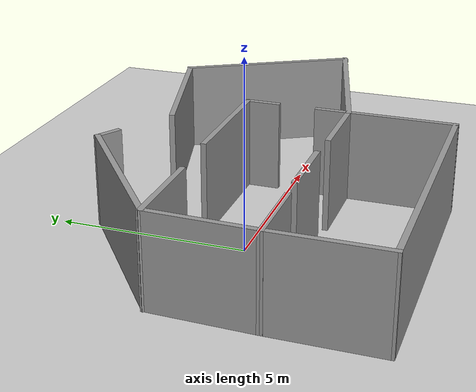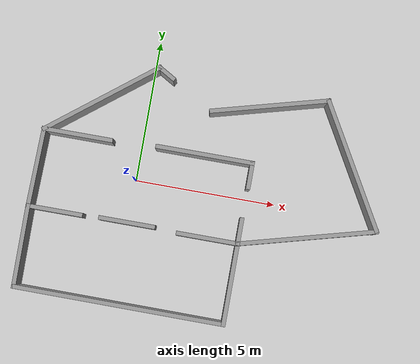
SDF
<sdf version="1.6">
 <world name="default">
  <light name="sun" type="directional">
   <pose>0 0 10 0 -0 0</pose>
   <diffuse>0.8 0.8 0.8 1</diffuse>
   <specular>0.2 0.2 0.2 1</specular>
   <attenuation>
    <range>1000</range>
    <constant>0.9</constant>
    <linear>0.01</linear>
    <quadratic>0.001</quadratic>
   </attenuation>
   <direction>-0.5 0.1 -0.9</direction>
  </light>
  <model name="ground_plane">
   <static>1</static>
   <link name="link">
    <collision name="collision">
     <geometry><plane><normal>0 0 1</normal><size>100 100</size></plane></geometry>
     <surface>
      <contact><collide_bitmask>65535</collide_bitmask></contact>
      <friction><ode><mu>100</mu><mu2>50</mu2></ode></friction>
     </surface>
    </collision>
    <visual name="visual">
     <cast_shadows>0</cast_shadows>
     <geometry><plane><normal>0 0 1</normal><size>100 100</size></plane></geometry>
     <material>
      <script><uri>file://media/materials/scripts/gazebo.material</uri><name>Gazebo/Grey</name></script>
     </material>
    </visual>
   </link>
  </model>
  <gravity>0 0 -9.8</gravity>
  <magnetic_field>6e-06 2.3e-05 -4.2e-05</magnetic_field>
  <atmosphere type="adiabatic"/>
  <physics name="default_physics" default="0" type="ode">
   <max_step_size>0.001</max_step_size>
   <real_time_factor>1</real_time_factor>
   <real_time_update_rate>1000</real_time_update_rate>
  </physics>
  <scene><ambient>0.4 0.4 0.4 1</ambient><background>0.7 0.7 0.7 1</background><shadows>1</shadows></scene>
  <spherical_coordinates>
   <surface_model>EARTH_WGS84</surface_model>
   <latitude_deg>0</latitude_deg>
   <longitude_deg>0</longitude_deg>
   <elevation>0</elevation>
   <heading_deg>0</heading_deg>
  </spherical_coordinates>
  <model name="moj_model">
   <pose>2.57272 -0.221151 0 0 -0 0</pose>
   <link name="Wall_0">
    <collision name="Wall_0_Collision">
     <geometry><box><size>3 0.15 2.5</size></box></geometry>
     <pose>0 0 1.25 0 -0 0</pose>
    </collision>
    <visual name="Wall_0_Visual">
     <pose>0 0 1.25 0 -0 0</pose>
     <geometry><box><size>3 0.15 2.5</size></box></geometry>
     <material>
      <script><uri>file://media/materials/scripts/gazebo.material</uri><name>Gazebo/Grey</name></script>
      <ambient>1 1 1 1</ambient>
     </material>
     <meta><layer>0</layer></meta>
    </visual>
    <pose>-6.06005 -2.76964 0 0 -0 1.5708</pose>
   </link>
   <link name="Wall_1">
    <collision name="Wall_1_Collision">
     <geometry><box><size>2 0.15 2.5</size></box></geometry>
     <pose>0 0 1.25 0 -0 0</pose>
    </collision>
    <visual name="Wall_1_Visual">
     <pose>0 0 1.25 0 -0 0</pose>
     <geometry><box><size>2 0.15 2.5</size></box></geometry>
     <material>
      <script><uri>file://media/materials/scripts/gazebo.material</uri><name>Gazebo/Grey</name></script>
      <ambient>1 1 1 1</ambient>
     </material>
     <meta><layer>0</layer></meta>
    </visual>
    <pose>-5.13505 -1.34464 0 0 -0 0</pose>
   </link>
   <link name="Wall_10">
    <collision name="Wall_10_Collision">
     <geometry><box><size>3 0.15 2.5</size></box></geometry>
     <pose>0 0 1.25 0 -0 0</pose>
    </collision>
    <visual name="Wall_10_Visual">
     <pose>0 0 1.25 0 -0 0</pose>
     <geometry><box><size>3 0.15 2.5</size></box></geometry>
     <material>
      <script><uri>file://media/materials/scripts/gazebo.material</uri><name>Gazebo/Grey</name></script>
      <ambient>1 1 1 1</ambient>
     </material>
     <meta><layer>0</layer></meta>
    </visual>
    <pose>1.34995 -2.79964 0 0 -0 -1.5708</pose>
   </link>
   <link name="Wall_11">
    <collision name="Wall_11_Collision">
     <geometry><box><size>7.56006 0.15 2.5</size></box></geometry>
     <pose>0 0 1.25 0 -0 0</pose>
    </collision>
    <visual name="Wall_11_Visual">
     <pose>0 0 1.25 0 -0 0</pose>
     <geometry><box><size>7.56006 0.15 2.5</size></box></geometry>
     <material>
      <script><uri>file://media/materials/scripts/gazebo.material</uri><name>Gazebo/Grey</name></script>
      <ambient>1 1 1 1</ambient>
     </material>
     <meta><layer>0</layer></meta>
    </visual>
    <pose>-2.35505 -4.20964 0 0 -0 3.13754</pose>
   </link>
   <link name="Wall_13">
    <collision name="Wall_13_Collision">
     <geometry><box><size>1 0.15 2.5</size></box></geometry>
     <pose>0 0 1.25 0 -0 0</pose>
    </collision>
    <visual name="Wall_13_Visual">
     <pose>0 0 1.25 0 -0 0</pose>
     <geometry><box><size>1 0.15 2.5</size></box></geometry>
     <material>
      <script><uri>file://media/materials/scripts/gazebo.material</uri><name>Gazebo/Grey</name></script>
      <ambient>1 1 1 1</ambient>
     </material>
     <meta><layer>0</layer></meta>
    </visual>
    <pose>1.34995 -0.949641 0 0 -0 1.5708</pose>
   </link>
   <link name="Wall_15">
    <collision name="Wall_15_Collision">
     <geometry><box><size>1 0.15 2.5</size></box></geometry>
     <pose>0 0 1.25 0 -0 0</pose>
    </collision>
    <visual name="Wall_15_Visual">
     <pose>0 0 1.25 0 -0 0</pose>
     <geometry><box><size>1 0.15 2.5</size></box></geometry>
     <material>
      <script><uri>file://media/materials/scripts/gazebo.material</uri><name>Gazebo/Grey</name></script>
      <ambient>1 1 1 1</ambient>
     </material>
     <meta><layer>0</layer></meta>
    </visual>
    <pose>1.36995 1.05036 0 0 -0 1.5708</pose>
   </link>
   <link name="Wall_17">
    <collision name="Wall_17_Collision">
     <geometry><box><size>3.5 0.15 2.5</size></box></geometry>
     <pose>0 0 1.25 0 -0 0</pose>
    </collision>
    <visual name="Wall_17_Visual">
     <pose>0 0 1.25 0 -0 0</pose>
     <geometry><box><size>3.5 0.15 2.5</size></box></geometry>
     <material>
      <script><uri>file://media/materials/scripts/gazebo.material</uri><name>Gazebo/Grey</name></script>
      <ambient>1 1 1 1</ambient>
     </material>
     <meta><layer>0</layer></meta>
    </visual>
    <pose>-0.305049 1.47536 0 0 -0 3.14159</pose>
   </link>
   <link name="Wall_6">
    <collision name="Wall_6_Collision">
     <geometry><box><size>2 0.15 2.5</size></box></geometry>
     <pose>0 0 1.25 0 -0 0</pose>
    </collision>
    <visual name="Wall_6_Visual">
     <pose>0 0 1.25 0 -0 0</pose>
     <geometry><box><size>2 0.15 2.5</size></box></geometry>
     <material>
      <script><uri>file://media/materials/scripts/gazebo.material</uri><name>Gazebo/Grey</name></script>
      <ambient>1 1 1 1</ambient>
     </material>
     <meta><layer>0</layer></meta>
    </visual>
    <pose>-2.57505 -1.31464 0 0 -0 0</pose>
   </link>
   <link name="Wall_8">
    <collision name="Wall_8_Collision">
     <geometry><box><size>2.25 0.15 2.5</size></box></geometry>
     <pose>0 0 1.25 0 -0 0</pose>
    </collision>
    <visual name="Wall_8_Visual">
     <pose>0 0 1.25 0 -0 0</pose>
     <geometry><box><size>2.25 0.15 2.5</size></box></geometry>
     <material>
      <script><uri>file://media/materials/scripts/gazebo.material</uri><name>Gazebo/Grey</name></script>
      <ambient>1 1 1 1</ambient>
     </material>
     <meta><layer>0</layer></meta>
    </visual>
    <pose>0.299951 -1.37464 0 0 -0 0</pose>
   </link>
   <link name="Wall_82">
    <collision name="Wall_82_Collision">
     <geometry><box><size>2.5 0.15 2.5</size></box></geometry>
     <pose>0 0 1.25 0 -0 0</pose>
    </collision>
    <visual name="Wall_82_Visual">
     <pose>0 0 1.25 0 -0 0</pose>
     <geometry><box><size>2.5 0.15 2.5</size></box></geometry>
     <material>
      <script><uri>file://media/materials/scripts/gazebo.material</uri><name>Gazebo/Grey</name></script>
      <ambient>1 1 1 1</ambient>
     </material>
     <meta><layer>0</layer></meta>
    </visual>
    <pose>-4.80738 1.39689 0 0 -0 3.14159</pose>
   </link>
   <link name="Wall_83">
    <collision name="Wall_83_Collision">
     <geometry><box><size>2.89263 0.15 2.5</size></box></geometry>
     <pose>0 0 1.25 0 -0 0</pose>
    </collision>
    <visual name="Wall_83_Visual">
     <pose>0 0 1.25 0 -0 0</pose>
     <geometry><box><size>2.89263 0.15 2.5</size></box></geometry>
     <material>
      <script><uri>file://media/materials/scripts/gazebo.material</uri><name>Gazebo/Grey</name></script>
      <ambient>1 1 1 1</ambient>
     </material>
     <meta><layer>0</layer></meta>
    </visual>
    <pose>-6.02121 0.026122 0 0 -0 -1.59912</pose>
   </link>
   <link name="Wall_85">
    <collision name="Wall_85_Collision">
     <geometry><box><size>5 0.15 2.5</size></box></geometry>
     <pose>0 0 1.25 0 -0 0</pose>
    </collision>
    <visual name="Wall_85_Visual">
     <pose>0 0 1.25 0 -0 0</pose>
     <geometry><box><size>5 0.15 2.5</size></box></geometry>
     <material>
      <script><uri>file://media/materials/scripts/gazebo.material</uri><name>Gazebo/Grey</name></script>
      <ambient>1 1 1 1</ambient>
     </material>
     <meta><layer>0</layer></meta>
    </visual>
    <pose>3.69232 -0.747005 0 0 -0 0.261799</pose>
   </link>
   <link name="Wall_86">
    <collision name="Wall_86_Collision">
     <geometry><box><size>5 0.15 2.5</size></box></geometry>
     <pose>0 0 1.25 0 -0 0</pose>
    </collision>
    <visual name="Wall_86_Visual">
     <pose>0 0 1.25 0 -0 0</pose>
     <geometry><box><size>5 0.15 2.5</size></box></geometry>
     <material>
      <script><uri>file://media/materials/scripts/gazebo.material</uri><name>Gazebo/Grey</name></script>
      <ambient>1 1 1 1</ambient>
     </material>
     <meta><layer>0</layer></meta>
    </visual>
    <pose>4.82219 1.98074 0 0 -0 2.0944</pose>
   </link>
   <link name="Wall_87">
    <collision name="Wall_87_Collision">
     <geometry><box><size>4.25 0.15 2.5</size></box></geometry>
     <pose>0 0 1.25 0 -0 0</pose>
    </collision>
    <visual name="Wall_87_Visual">
     <pose>0 0 1.25 0 -0 0</pose>
     <geometry><box><size>4.25 0.15 2.5</size></box></geometry>
     <material>
      <script><uri>file://media/materials/scripts/gazebo.material</uri><name>Gazebo/Grey</name></script>
      <ambient>1 1 1 1</ambient>
     </material>
     <meta><layer>0</layer></meta>
    </visual>
    <pose>1.62954 3.55028 0 0 -0 -2.87979</pose>
   </link>
   <link name="Wall_89">
    <collision name="Wall_89_Collision">
     <geometry><box><size>4.70668 0.15 2.5</size></box></geometry>
     <pose>0 0 1.25 0 -0 0</pose>
    </collision>
    <visual name="Wall_89_Visual">
     <pose>0 0 1.25 0 -0 0</pose>
     <geometry><box><size>4.70668 0.15 2.5</size></box></geometry>
     <material>
      <script><uri>file://media/materials/scripts/gazebo.material</uri><name>Gazebo/Grey</name></script>
      <ambient>1 1 1 1</ambient>
     </material>
     <meta><layer>0</layer></meta>
    </visual>
    <pose>-4.18407 2.79579 0 0 -0 -2.48047</pose>
   </link>
   <link name="Wall_91">
    <collision name="Wall_91_Collision">
     <geometry><box><size>0.75 0.15 2.5</size></box></geometry>
     <pose>0 0 1.25 0 -0 0</pose>
    </collision>
    <visual name="Wall_91_Visual">
     <pose>0 0 1.25 0 -0 0</pose>
     <geometry><box><size>0.75 0.15 2.5</size></box></geometry>
     <material>
      <script><uri>file://media/materials/scripts/gazebo.material</uri><name>Gazebo/Grey</name></script>
      <ambient>1 1 1 1</ambient>
     </material>
     <meta><layer>0</layer></meta>
    </visual>
    <pose>-2.12596 4.0447 0 0 -0 -0.523599</pose>
   </link>
   <static>1</static>
  </model>
 </world>
</sdf>
